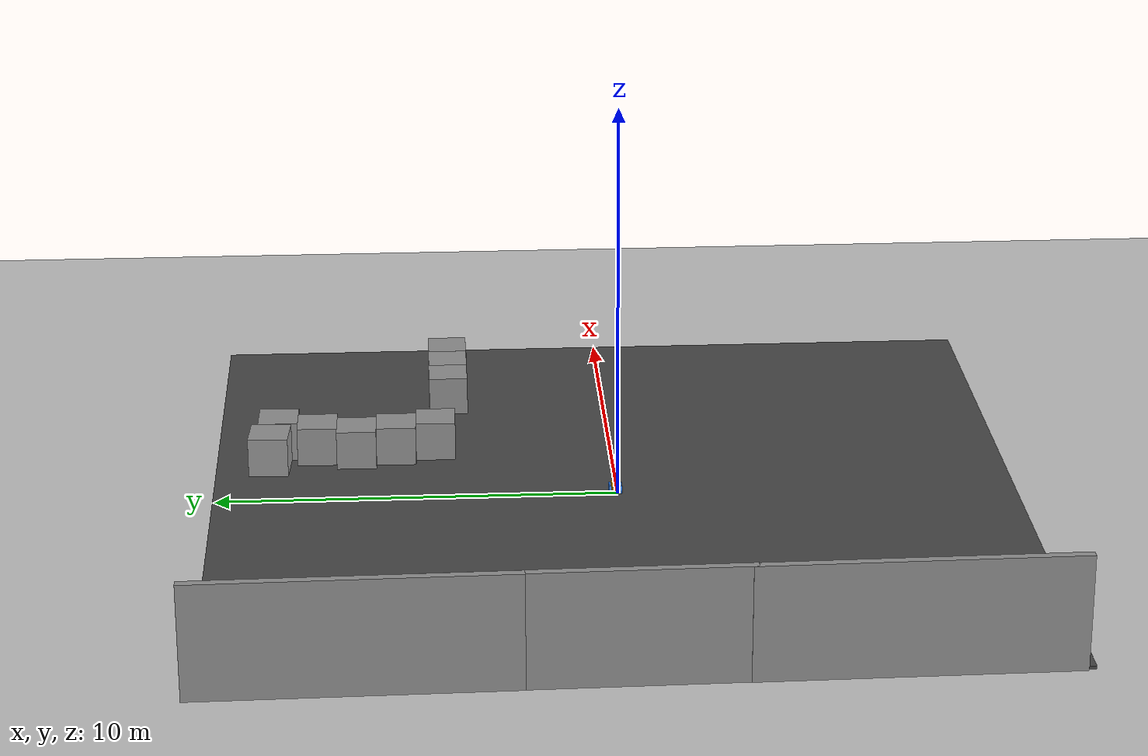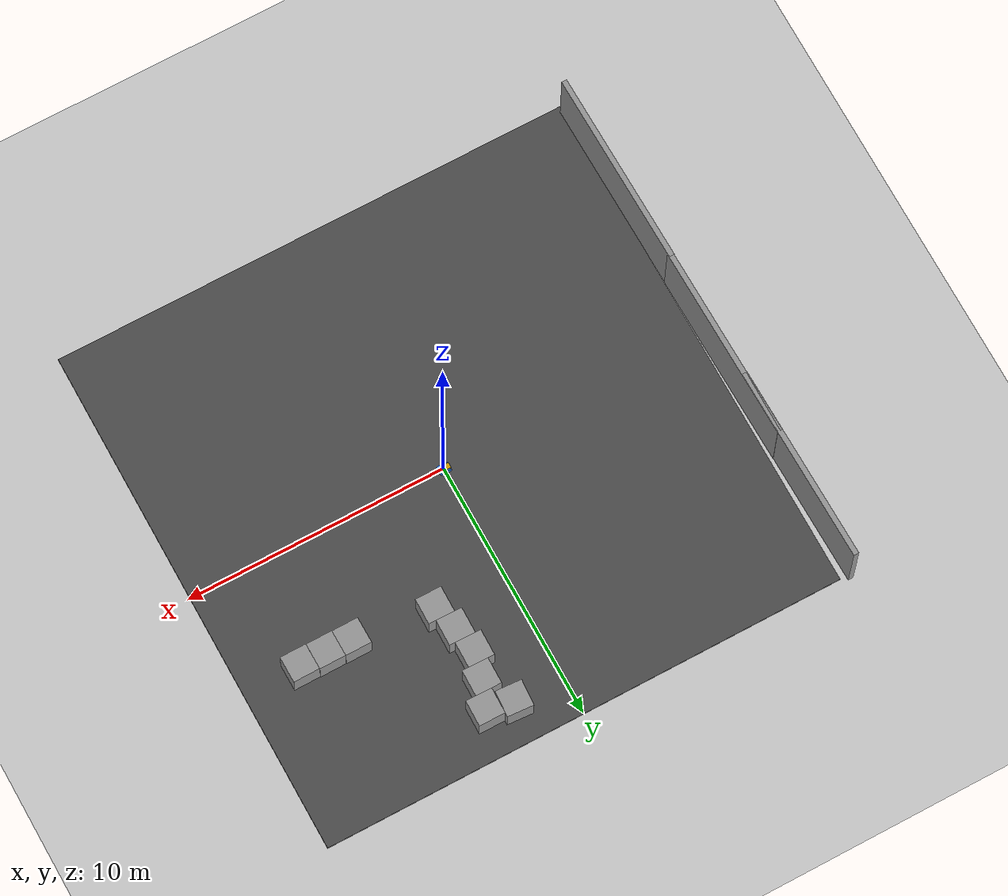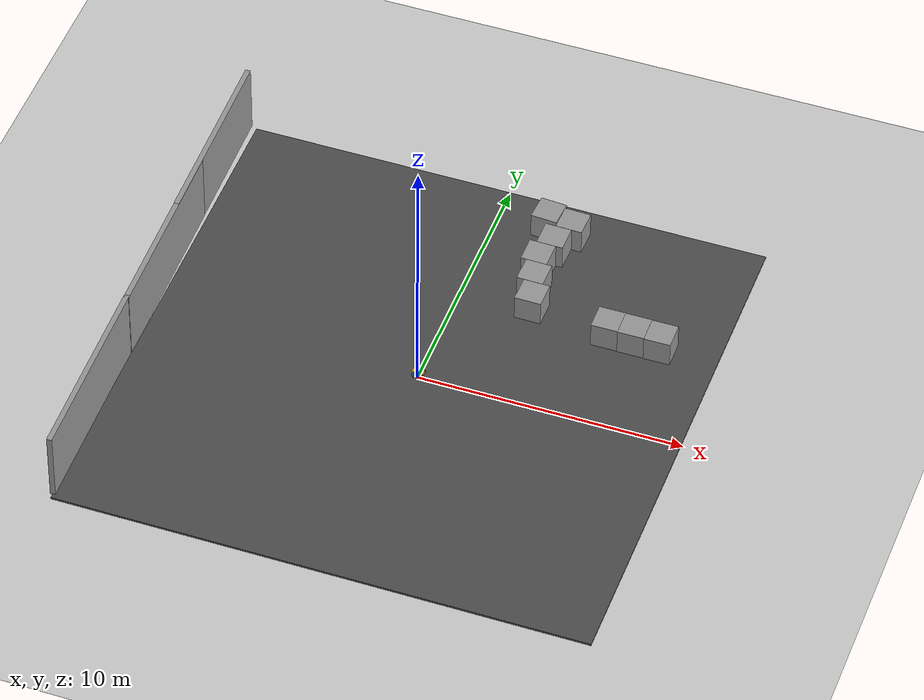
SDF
<sdf version="1.7">
 <world name="default">
  <light name="sun" type="directional">
   <pose>0 0 10 0 -0 0</pose>
   <diffuse>0.8 0.8 0.8 1</diffuse>
   <specular>0.2 0.2 0.2 1</specular>
   <attenuation>
    <range>1000</range>
    <constant>0.9</constant>
    <linear>0.01</linear>
    <quadratic>0.001</quadratic>
   </attenuation>
   <direction>-0.5 0.1 -0.9</direction>
   <spot><inner_angle>0</inner_angle><outer_angle>0</outer_angle><falloff>0</falloff></spot>
  </light>
  <model name="ground_plane">
   <static>1</static>
   <link name="link">
    <collision name="collision">
     <geometry><plane><normal>0 0 1</normal><size>100 100</size></plane></geometry>
     <surface><friction><ode><mu>100</mu><mu2>50</mu2></ode></friction></surface>
    </collision>
    <visual name="visual">
     <cast_shadows>0</cast_shadows>
     <geometry><plane><normal>0 0 1</normal><size>100 100</size></plane></geometry>
     <material>
      <script><uri>file://media/materials/scripts/gazebo.material</uri><name>Gazebo/Grey</name></script>
     </material>
    </visual>
   </link>
  </model>
  <gravity>0 0 -9.8</gravity>
  <magnetic_field>6e-06 2.3e-05 -4.2e-05</magnetic_field>
  <atmosphere type="adiabatic"/>
  <physics type="ode">
   <max_step_size>0.001</max_step_size>
   <real_time_factor>1</real_time_factor>
   <real_time_update_rate>1000</real_time_update_rate>
  </physics>
  <scene><ambient>0.4 0.4 0.4 1</ambient><background>0.7 0.7 0.7 1</background><shadows>1</shadows></scene>
  <spherical_coordinates>
   <surface_model>EARTH_WGS84</surface_model>
   <latitude_deg>0</latitude_deg>
   <longitude_deg>0</longitude_deg>
   <elevation>0</elevation>
   <heading_deg>0</heading_deg>
  </spherical_coordinates>
  <model name="asphalt_plane">
   <static>1</static>
   <link name="link">
    <collision name="collision"><geometry><box><size>20 20 0.1</size></box></geometry></collision>
    <visual name="visual">
     <cast_shadows>0</cast_shadows>
     <geometry><box><size>20 20 0.1</size></box></geometry>
     <material>
      <script>
       <uri>model://asphalt_plane/materials/scripts</uri>
       <uri>model://asphalt_plane/materials/textures</uri>
       <name>vrc/asphalt</name>
      </script>
     </material>
    </visual>
   </link>
   <pose>-0.089672 0.059574 0 0 -0 0</pose>
  </model>
  <model name="grey_wall">
   <static>1</static>
   <link name="link">
    <pose>0 0 1.4 0 -0 0</pose>
    <collision name="collision"><geometry><box><size>7.5 0.2 2.8</size></box></geometry></collision>
    <visual name="visual">
     <cast_shadows>0</cast_shadows>
     <geometry><box><size>7.5 0.2 2.8</size></box></geometry>
     <material>
      <script>
       <uri>model://grey_wall/materials/scripts</uri>
       <uri>model://grey_wall/materials/textures</uri>
       <name>vrc/grey_wall</name>
      </script>
     </material>
    </visual>
   </link>
   <pose>-10.1561 -5.99504 0 0 -0 1.58739</pose>
  </model>
  <model name="grey_wall_clone">
   <static>1</static>
   <link name="link">
    <pose>0 0 1.4 0 -0 0</pose>
    <collision name="collision"><geometry><box><size>7.5 0.2 2.8</size></box></geometry></collision>
    <visual name="visual">
     <cast_shadows>0</cast_shadows>
     <geometry><box><size>7.5 0.2 2.8</size></box></geometry>
     <material>
      <script>
       <uri>model://grey_wall/materials/scripts</uri>
       <uri>model://grey_wall/materials/textures</uri>
       <name>vrc/grey_wall</name>
      </script>
     </material>
    </visual>
   </link>
   <pose>-10.2657 1.37707 0 0 -0 1.58739</pose>
  </model>
  <model name="grey_wall_clone_clone">
   <static>1</static>
   <link name="link">
    <pose>0 0 1.4 0 -0 0</pose>
    <collision name="collision"><geometry><box><size>7.5 0.2 2.8</size></box></geometry></collision>
    <visual name="visual">
     <cast_shadows>0</cast_shadows>
     <geometry><box><size>7.5 0.2 2.8</size></box></geometry>
     <material>
      <script>
       <uri>model://grey_wall/materials/scripts</uri>
       <uri>model://grey_wall/materials/textures</uri>
       <name>vrc/grey_wall</name>
      </script>
     </material>
    </visual>
   </link>
   <pose>-10.3624 6.45785 0 0 -0 1.58739</pose>
  </model>
  <light name="user_directional_light_0" type="directional">
   <pose>-5.63054 -11.2657 1 0 -0 0</pose>
   <diffuse>0.5 0.5 0.5 1</diffuse>
   <specular>0.1 0.1 0.1 1</specular>
   <direction>0.1 0.1 -0.9</direction>
   <attenuation>
    <range>20</range>
    <constant>0.5</constant>
    <linear>0.01</linear>
    <quadratic>0.001</quadratic>
   </attenuation>
   <spot><inner_angle>0</inner_angle><outer_angle>0</outer_angle><falloff>0</falloff></spot>
  </light>
  <light name="user_directional_light_1" type="directional">
   <pose>10.4762 9.60881 1 0 -0 0</pose>
   <diffuse>0.5 0.5 0.5 1</diffuse>
   <specular>0.1 0.1 0.1 1</specular>
   <direction>0.1 0.1 -0.9</direction>
   <attenuation>
    <range>20</range>
    <constant>0.5</constant>
    <linear>0.01</linear>
    <quadratic>0.001</quadratic>
   </attenuation>
   <spot><inner_angle>0</inner_angle><outer_angle>0</outer_angle><falloff>0</falloff></spot>
  </light>
  <model name="process_robot">
   <link name="base_footprint">
    <inertial>
     <pose>0 0 0.14788 0 -0 0</pose>
     <mass>10</mass>
     <inertia>
      <ixx>0.047205</ixx>
      <ixy>0</ixy>
      <ixz>-1.93799e-07</ixz>
      <iyy>0.178893</iyy>
      <iyz>0</iyz>
      <izz>0.198359</izz>
     </inertia>
    </inertial>
    <collision name="base_footprint_fixed_joint_lump__base_link_collision">
     <pose>0 0 0.14788 0 -0 0</pose>
     <geometry><box><size>0.445 0.2 0.129</size></box></geometry>
    </collision>
    <collision name="base_footprint_fixed_joint_lump__left_tri_ir_sensor_collision_1">
     <pose>0.0225 0.01 0.22238 0 -0 0.959931</pose>
     <geometry><box><size>0.01 0.01 0.01</size></box></geometry>
    </collision>
    <collision name="base_footprint_fixed_joint_lump__right_tri_ir_sensor_collision_2">
     <pose>0.0225 -0.01 0.22238 0 0 -0.959931</pose>
     <geometry><box><size>0.01 0.01 0.01</size></box></geometry>
    </collision>
    <collision name="base_footprint_fixed_joint_lump__tri_ir_sensor_collision_3">
     <pose>0.0225 0 0.22238 0 -0 0</pose>
     <geometry><box><size>0.01 0.01 0.01</size></box></geometry>
    </collision>
    <collision name="base_footprint_fixed_joint_lump__web_cam_link_collision_4">
     <pose>0.2225 0 0.21238 0 -0 0</pose>
     <geometry><box><size>0.01 0.01 0.01</size></box></geometry>
    </collision>
    <visual name="base_footprint_fixed_joint_lump__base_link_visual">
     <pose>0 0 0.14788 0 -0 0</pose>
     <geometry><box><size>0.445 0.2 0.129</size></box></geometry>
     <material>
      <ambient>0.8392 0.6314 0 1</ambient>
      <diffuse>0.8392 0.6314 0 1</diffuse>
      <specular>0.99 0.99 0.99 1</specular>
      <emissive>0 0 0 0</emissive>
     </material>
    </visual>
    <visual name="base_footprint_fixed_joint_lump__left_tri_ir_sensor_visual_1">
     <pose>0.0225 0.01 0.22238 0 -0 0.959931</pose>
     <geometry><box><size>0.01 0.01 0.01</size></box></geometry>
    </visual>
    <visual name="base_footprint_fixed_joint_lump__right_tri_ir_sensor_visual_2">
     <pose>0.0225 -0.01 0.22238 0 0 -0.959931</pose>
     <geometry><box><size>0.01 0.01 0.01</size></box></geometry>
    </visual>
    <visual name="base_footprint_fixed_joint_lump__tri_ir_sensor_visual_3">
     <pose>0.0225 0 0.22238 0 -0 0</pose>
     <geometry><box><size>0.01 0.01 0.01</size></box></geometry>
    </visual>
    <visual name="base_footprint_fixed_joint_lump__web_cam_link_visual_4">
     <pose>0.2225 0 0.21238 0 -0 0</pose>
     <geometry><box><size>0.01 0.01 0.01</size></box></geometry>
    </visual>
    <sensor name="imu_sensor" type="imu">
     <always_on>1</always_on>
     <update_rate>100</update_rate>
     <visualize>1</visualize>
     <topic>__default_topic__</topic>
     <plugin name="imu_plugin" filename="libgazebo_ros_imu_sensor.so">
      <ros><remapping>~/out:=imu/data</remapping></ros>
      <topicName>imu/data</topicName>
      <bodyName>imu_link</bodyName>
      <updateRateHZ>100.0</updateRateHZ>
      <xyzOffset>0 0 0</xyzOffset>
      <rpyOffset>0 0 0</rpyOffset>
      <frameName>imu_link</frameName>
      <initialOrientationAsReference>0</initialOrientationAsReference>
     </plugin>
     <pose>0 0 0.14788 0 -0 0</pose>
    </sensor>
    <sensor name="left_ir_sensor" type="ray">
     <always_on>1</always_on>
     <visualize>1</visualize>
     <update_rate>100</update_rate>
     <ray>
      <scan>
       <horizontal>
        <samples>360</samples>
        <resolution>1</resolution>
        <min_angle>-0.45</min_angle>
        <max_angle>0.45</max_angle>
       </horizontal>
       <vertical><samples>1</samples><min_angle>0</min_angle><max_angle>0</max_angle></vertical>
      </scan>
      <range><min>0.12</min><max>1</max><resolution>0.015</resolution></range>
      <radiation_type>infrared</radiation_type>
      <radiation_type>INFRARED</radiation_type>
     </ray>
     <plugin name="gazebo_ros_range" filename="libgazebo_ros_ray_sensor.so">
      <ros><remapping>~/out:=tri_ir_sensor/left/range</remapping></ros>
      <output_type>sensor_msgs/Range</output_type>
      <frame_name>left_tri_ir_range_frame</frame_name>
      <radiation_type>infrared</radiation_type>
      <gaussianNoise>0.01</gaussianNoise>
      <updateRate>30</updateRate>
     </plugin>
     <pose>0.025942 0.014915 0.22238 0 -0 0.959931</pose>
    </sensor>
    <sensor name="right_ir_sensor" type="ray">
     <always_on>1</always_on>
     <visualize>1</visualize>
     <update_rate>100</update_rate>
     <ray>
      <scan>
       <horizontal>
        <samples>360</samples>
        <resolution>1</resolution>
        <min_angle>-0.45</min_angle>
        <max_angle>0.45</max_angle>
       </horizontal>
       <vertical><samples>1</samples><min_angle>0</min_angle><max_angle>0</max_angle></vertical>
      </scan>
      <range><min>0.12</min><max>1</max><resolution>0.015</resolution></range>
      <radiation_type>INFRARED</radiation_type>
     </ray>
     <plugin name="gazebo_ros_range" filename="libgazebo_ros_ray_sensor.so">
      <ros><remapping>~/out:=tri_ir_sensor/right/range</remapping></ros>
      <output_type>sensor_msgs/Range</output_type>
      <frame_name>right_tri_ir_range_frame</frame_name>
      <radiation_type>infrared</radiation_type>
      <gaussianNoise>0.01</gaussianNoise>
      <updateRate>30</updateRate>
     </plugin>
     <pose>0.025942 -0.014915 0.22238 0 0 -0.959931</pose>
    </sensor>
    <sensor name="ir_sensor" type="ray">
     <always_on>1</always_on>
     <visualize>1</visualize>
     <update_rate>100</update_rate>
     <ray>
      <scan>
       <horizontal>
        <samples>360</samples>
        <resolution>1</resolution>
        <min_angle>-0.523599</min_angle>
        <max_angle>0.523599</max_angle>
       </horizontal>
       <vertical><samples>1</samples><min_angle>0</min_angle><max_angle>0</max_angle></vertical>
      </scan>
      <range><min>0.12</min><max>1</max><resolution>0.015</resolution></range>
      <radiation_type>infrared</radiation_type>
      <radiation_type>INFRARED</radiation_type>
     </ray>
     <plugin name="gazebo_ros_range" filename="libgazebo_ros_ray_sensor.so">
      <ros><remapping>~/out:=tri_ir_sensor/middle/range</remapping></ros>
      <output_type>sensor_msgs/Range</output_type>
      <frame_name>tri_ir_range_frame</frame_name>
      <radiation_type>infrared</radiation_type>
      <gaussianNoise>0.01</gaussianNoise>
      <updateRate>30</updateRate>
     </plugin>
     <pose>0.0285 0 0.22238 0 -0 0</pose>
    </sensor>
    <sensor name="web_cam_1" type="camera">
     <update_rate>30</update_rate>
     <camera name="head">
      <horizontal_fov>1.39626</horizontal_fov>
      <image><width>1920</width><height>1080</height><format>R8G8B8</format></image>
      <clip><near>0.02</near><far>300</far></clip>
      <noise><type>gaussian</type><mean>0</mean><stddev>0.007</stddev></noise>
     </camera>
     <plugin name="web_cam_controller" filename="libgazebo_ros_camera.so">
      <alwaysOn>1</alwaysOn>
      <updateRate>0.0</updateRate>
      <cameraName>web_cam_1</cameraName>
      <imageTopicName>image_raw</imageTopicName>
      <cameraInfoTopicName>camera_info</cameraInfoTopicName>
      <frameName>web_cam_image_frame</frameName>
      <hackBaseline>0.07</hackBaseline>
      <distortionK1>0.0</distortionK1>
      <distortionK2>0.0</distortionK2>
      <distortionK3>0.0</distortionK3>
      <distortionT1>0.0</distortionT1>
      <distortionT2>0.0</distortionT2>
     </plugin>
     <pose>0.2225 0 0.21238 0 -0 0</pose>
    </sensor>
   </link>
   <joint name="front_left_wheel_joint" type="revolute">
    <pose relative_to="base_footprint">0.12 0.1355 0.1 0 -0 0</pose>
    <parent>base_footprint</parent>
    <child>front_left_wheel_link</child>
    <axis>
     <xyz>0 1 0</xyz>
     <limit><lower>-1e+16</lower><upper>1e+16</upper></limit>
     <dynamics><spring_reference>0</spring_reference><spring_stiffness>0</spring_stiffness></dynamics>
    </axis>
   </joint>
   <link name="front_left_wheel_link">
    <pose relative_to="front_left_wheel_joint">0 0 0 0 -0 0</pose>
    <inertial>
     <mass>0.4</mass>
     <inertia><ixx>0.0016</ixx><ixy>0</ixy><ixz>0</ixz><iyy>0.0016</iyy><iyz>0</iyz><izz>0.0016</izz></inertia>
    </inertial>
    <collision name="front_left_wheel_link_collision">
     <pose>0 0 0 1.5708 -0 0</pose>
     <geometry><cylinder><length>0.05</length><radius>0.1</radius></cylinder></geometry>
     <surface><friction><ode><mu>0.01</mu><mu2>0.01</mu2></ode></friction></surface>
    </collision>
    <visual name="front_left_wheel_link_visual">
     <pose>0 0 0 1.5708 -0 0</pose>
     <geometry><cylinder><length>0.05</length><radius>0.1</radius></cylinder></geometry>
     <material>
      <ambient>0.1764 0.4588 0.8509 1</ambient>
      <diffuse>0.1764 0.4588 0.8509 1</diffuse>
      <specular>0.1764 0.4588 0.8509 1</specular>
      <emissive>0 0 0 0</emissive>
     </material>
    </visual>
   </link>
   <joint name="front_right_wheel_joint" type="revolute">
    <pose relative_to="base_footprint">0.12 -0.1355 0.1 0 -0 0</pose>
    <parent>base_footprint</parent>
    <child>front_right_wheel_link</child>
    <axis>
     <xyz>0 1 0</xyz>
     <limit><lower>-1e+16</lower><upper>1e+16</upper></limit>
     <dynamics><spring_reference>0</spring_reference><spring_stiffness>0</spring_stiffness></dynamics>
    </axis>
   </joint>
   <link name="front_right_wheel_link">
    <pose relative_to="front_right_wheel_joint">0 0 0 0 -0 0</pose>
    <inertial>
     <mass>0.4</mass>
     <inertia><ixx>0.0016</ixx><ixy>0</ixy><ixz>0</ixz><iyy>0.0016</iyy><iyz>0</iyz><izz>0.0016</izz></inertia>
    </inertial>
    <collision name="front_right_wheel_link_collision">
     <pose>0 0 0 1.5708 -0 0</pose>
     <geometry><cylinder><length>0.05</length><radius>0.1</radius></cylinder></geometry>
     <surface><friction><ode><mu>0.01</mu><mu2>0.01</mu2></ode></friction></surface>
    </collision>
    <visual name="front_right_wheel_link_visual">
     <pose>0 0 0 1.5708 -0 0</pose>
     <geometry><cylinder><length>0.05</length><radius>0.1</radius></cylinder></geometry>
     <material>
      <ambient>0.1764 0.4588 0.8509 1</ambient>
      <diffuse>0.1764 0.4588 0.8509 1</diffuse>
      <specular>0.1764 0.4588 0.8509 1</specular>
      <emissive>0 0 0 0</emissive>
     </material>
    </visual>
   </link>
   <joint name="rear_left_wheel_joint" type="revolute">
    <pose relative_to="base_footprint">-0.12 0.1355 0.1 0 -0 0</pose>
    <parent>base_footprint</parent>
    <child>rear_left_wheel_link</child>
    <axis>
     <xyz>0 1 0</xyz>
     <limit><lower>-1e+16</lower><upper>1e+16</upper></limit>
     <dynamics><spring_reference>0</spring_reference><spring_stiffness>0</spring_stiffness></dynamics>
    </axis>
   </joint>
   <link name="rear_left_wheel_link">
    <pose relative_to="rear_left_wheel_joint">0 0 0 0 -0 0</pose>
    <inertial>
     <mass>0.4</mass>
     <inertia><ixx>0.0016</ixx><ixy>0</ixy><ixz>0</ixz><iyy>0.0016</iyy><iyz>0</iyz><izz>0.0016</izz></inertia>
    </inertial>
    <collision name="rear_left_wheel_link_collision">
     <pose>0 0 0 1.5708 -0 0</pose>
     <geometry><cylinder><length>0.05</length><radius>0.1</radius></cylinder></geometry>
     <surface><friction><ode><mu>0.01</mu><mu2>0.01</mu2></ode></friction></surface>
    </collision>
    <visual name="rear_left_wheel_link_visual">
     <pose>0 0 0 1.5708 -0 0</pose>
     <geometry><cylinder><length>0.05</length><radius>0.1</radius></cylinder></geometry>
     <material>
      <ambient>0.1764 0.4588 0.8509 1</ambient>
      <diffuse>0.1764 0.4588 0.8509 1</diffuse>
      <specular>0.1764 0.4588 0.8509 1</specular>
      <emissive>0 0 0 0</emissive>
     </material>
    </visual>
   </link>
   <joint name="rear_right_wheel_joint" type="revolute">
    <pose relative_to="base_footprint">-0.12 -0.1355 0.1 0 -0 0</pose>
    <parent>base_footprint</parent>
    <child>rear_right_wheel_link</child>
    <axis>
     <xyz>0 1 0</xyz>
     <limit><lower>-1e+16</lower><upper>1e+16</upper></limit>
     <dynamics><spring_reference>0</spring_reference><spring_stiffness>0</spring_stiffness></dynamics>
    </axis>
   </joint>
   <link name="rear_right_wheel_link">
    <pose relative_to="rear_right_wheel_joint">0 0 0 0 -0 0</pose>
    <inertial>
     <mass>0.4</mass>
     <inertia><ixx>0.0016</ixx><ixy>0</ixy><ixz>0</ixz><iyy>0.0016</iyy><iyz>0</iyz><izz>0.0016</izz></inertia>
    </inertial>
    <collision name="rear_right_wheel_link_collision">
     <pose>0 0 0 1.5708 -0 0</pose>
     <geometry><cylinder><length>0.05</length><radius>0.1</radius></cylinder></geometry>
     <surface><friction><ode><mu>0.01</mu><mu2>0.01</mu2></ode></friction></surface>
    </collision>
    <visual name="rear_right_wheel_link_visual">
     <pose>0 0 0 1.5708 -0 0</pose>
     <geometry><cylinder><length>0.05</length><radius>0.1</radius></cylinder></geometry>
     <material>
      <ambient>0.1764 0.4588 0.8509 1</ambient>
      <diffuse>0.1764 0.4588 0.8509 1</diffuse>
      <specular>0.1764 0.4588 0.8509 1</specular>
      <emissive>0 0 0 0</emissive>
     </material>
    </visual>
   </link>
   <static>0</static>
   <plugin name="object_controller" filename="libgazebo_ros_planar_move.so">
    <command_topic>cmd_vel</command_topic>
    <odometry_topic>odom</odometry_topic>
    <odometry_frame>odom</odometry_frame>
    <odometry_rate>20.0</odometry_rate>
    <robot_base_frame>base_footprint</robot_base_frame>
    <publish_odom>1</publish_odom>
    <publish_odom_tf>0</publish_odom_tf>
   </plugin>
   <pose>4.3e-05 0.060091 0.05 -4e-06 -1e-06 0.000111</pose>
  </model>
  <model name="unit_box">
   <pose>5.79022 4.12545 0.550002 -4e-06 -0 0.009171</pose>
   <link name="link">
    <inertial>
     <mass>1</mass>
     <inertia>
      <ixx>0.166667</ixx>
      <ixy>0</ixy>
      <ixz>0</ixz>
      <iyy>0.166667</iyy>
      <iyz>0</iyz>
      <izz>0.166667</izz>
     </inertia>
    </inertial>
    <collision name="collision"><geometry><box><size>1 1 1</size></box></geometry></collision>
    <visual name="visual">
     <geometry><box><size>1 1 1</size></box></geometry>
     <material>
      <script><name>Gazebo/Grey</name><uri>file://media/materials/scripts/gazebo.material</uri></script>
     </material>
    </visual>
   </link>
  </model>
  <model name="unit_box_clone">
   <pose>6.79033 4.12075 0.550002 -4e-06 -0 0.009161</pose>
   <link name="link">
    <inertial>
     <mass>1</mass>
     <inertia>
      <ixx>0.166667</ixx>
      <ixy>0</ixy>
      <ixz>0</ixz>
      <iyy>0.166667</iyy>
      <iyz>0</iyz>
      <izz>0.166667</izz>
     </inertia>
    </inertial>
    <collision name="collision"><geometry><box><size>1 1 1</size></box></geometry></collision>
    <visual name="visual">
     <geometry><box><size>1 1 1</size></box></geometry>
     <material>
      <script><name>Gazebo/Grey</name><uri>file://media/materials/scripts/gazebo.material</uri></script>
     </material>
    </visual>
   </link>
  </model>
  <model name="unit_box_clone_0">
   <pose>7.79093 4.11383 0.55 0 -0 0.008282</pose>
   <link name="link">
    <inertial>
     <mass>1</mass>
     <inertia>
      <ixx>0.166667</ixx>
      <ixy>0</ixy>
      <ixz>0</ixz>
      <iyy>0.166667</iyy>
      <iyz>0</iyz>
      <izz>0.166667</izz>
     </inertia>
    </inertial>
    <collision name="collision"><geometry><box><size>1 1 1</size></box></geometry></collision>
    <visual name="visual">
     <geometry><box><size>1 1 1</size></box></geometry>
     <material>
      <script><name>Gazebo/Grey</name><uri>file://media/materials/scripts/gazebo.material</uri></script>
     </material>
    </visual>
   </link>
  </model>
  <model name="unit_box_clone_1">
   <pose>2.5032 5.49879 0.549995 -0 -1e-05 -0.013431</pose>
   <link name="link">
    <inertial>
     <mass>1</mass>
     <inertia>
      <ixx>0.166667</ixx>
      <ixy>0</ixy>
      <ixz>0</ixz>
      <iyy>0.166667</iyy>
      <iyz>0</iyz>
      <izz>0.166667</izz>
     </inertia>
    </inertial>
    <collision name="collision"><geometry><box><size>1 1 1</size></box></geometry></collision>
    <visual name="visual">
     <geometry><box><size>1 1 1</size></box></geometry>
     <material>
      <script><name>Gazebo/Grey</name><uri>file://media/materials/scripts/gazebo.material</uri></script>
     </material>
    </visual>
   </link>
  </model>
  <model name="unit_box_clone_2">
   <pose>2.30459 6.50171 0.55 0 -0 -0.013487</pose>
   <link name="link">
    <inertial>
     <mass>1</mass>
     <inertia>
      <ixx>0.166667</ixx>
      <ixy>0</ixy>
      <ixz>0</ixz>
      <iyy>0.166667</iyy>
      <iyz>0</iyz>
      <izz>0.166667</izz>
     </inertia>
    </inertial>
    <collision name="collision"><geometry><box><size>1 1 1</size></box></geometry></collision>
    <visual name="visual">
     <geometry><box><size>1 1 1</size></box></geometry>
     <material>
      <script><name>Gazebo/Grey</name><uri>file://media/materials/scripts/gazebo.material</uri></script>
     </material>
    </visual>
   </link>
  </model>
  <model name="unit_box_clone_3">
   <pose>2.57331 7.49841 0.549998 -4e-06 -1e-06 -0.013446</pose>
   <link name="link">
    <inertial>
     <mass>1</mass>
     <inertia>
      <ixx>0.166667</ixx>
      <ixy>0</ixy>
      <ixz>0</ixz>
      <iyy>0.166667</iyy>
      <iyz>0</iyz>
      <izz>0.166667</izz>
     </inertia>
    </inertial>
    <collision name="collision"><geometry><box><size>1 1 1</size></box></geometry></collision>
    <visual name="visual">
     <geometry><box><size>1 1 1</size></box></geometry>
     <material>
      <script><name>Gazebo/Grey</name><uri>file://media/materials/scripts/gazebo.material</uri></script>
     </material>
    </visual>
   </link>
  </model>
  <model name="unit_box_clone_4">
   <pose>2.97407 8.49397 0.549998 -5e-06 -0 -0.016911</pose>
   <link name="link">
    <inertial>
     <mass>1</mass>
     <inertia>
      <ixx>0.166667</ixx>
      <ixy>0</ixy>
      <ixz>0</ixz>
      <iyy>0.166667</iyy>
      <iyz>0</iyz>
      <izz>0.166667</izz>
     </inertia>
    </inertial>
    <collision name="collision"><geometry><box><size>1 1 1</size></box></geometry></collision>
    <visual name="visual">
     <geometry><box><size>1 1 1</size></box></geometry>
     <material>
      <script><name>Gazebo/Grey</name><uri>file://media/materials/scripts/gazebo.material</uri></script>
     </material>
    </visual>
   </link>
  </model>
  <model name="unit_box_clone_5">
   <pose>1.9604 8.69271 0.55 0 0 -0.066428</pose>
   <link name="link">
    <inertial>
     <mass>1</mass>
     <inertia>
      <ixx>0.166667</ixx>
      <ixy>0</ixy>
      <ixz>0</ixz>
      <iyy>0.166667</iyy>
      <iyz>0</iyz>
      <izz>0.166667</izz>
     </inertia>
    </inertial>
    <collision name="collision"><geometry><box><size>1 1 1</size></box></geometry></collision>
    <visual name="visual">
     <geometry><box><size>1 1 1</size></box></geometry>
     <material>
      <script><name>Gazebo/Grey</name><uri>file://media/materials/scripts/gazebo.material</uri></script>
     </material>
    </visual>
   </link>
  </model>
  <model name="unit_box_clone_6">
   <pose>2.76321 4.4935 0.549999 -0 -2e-06 -0.010116</pose>
   <link name="link">
    <inertial>
     <mass>1</mass>
     <inertia>
      <ixx>0.166667</ixx>
      <ixy>0</ixy>
      <ixz>0</ixz>
      <iyy>0.166667</iyy>
      <iyz>0</iyz>
      <izz>0.166667</izz>
     </inertia>
    </inertial>
    <collision name="collision"><geometry><box><size>1 1 1</size></box></geometry></collision>
    <visual name="visual">
     <geometry><box><size>1 1 1</size></box></geometry>
     <material>
      <script><name>Gazebo/Grey</name><uri>file://media/materials/scripts/gazebo.material</uri></script>
     </material>
    </visual>
   </link>
  </model>
 </world>
</sdf>
